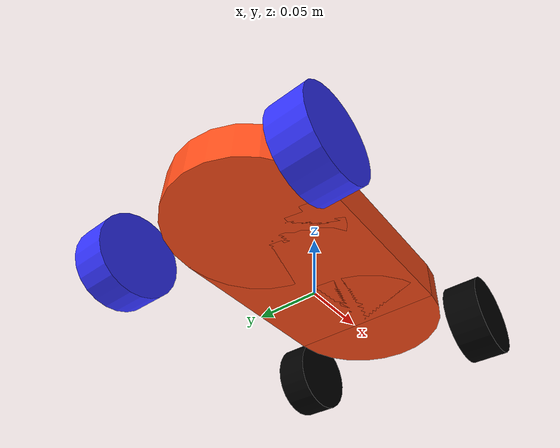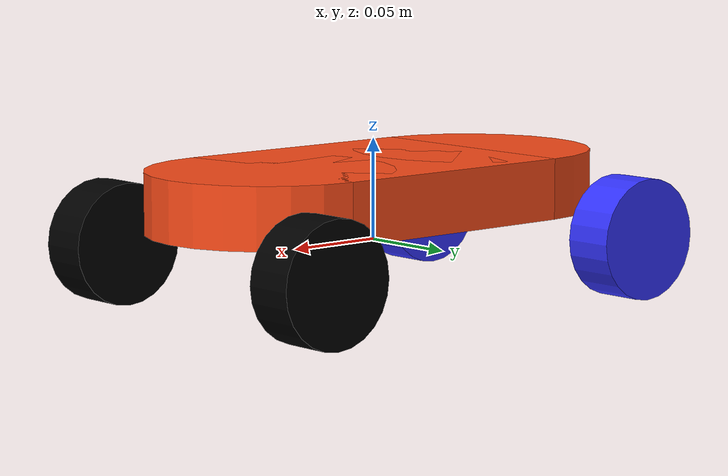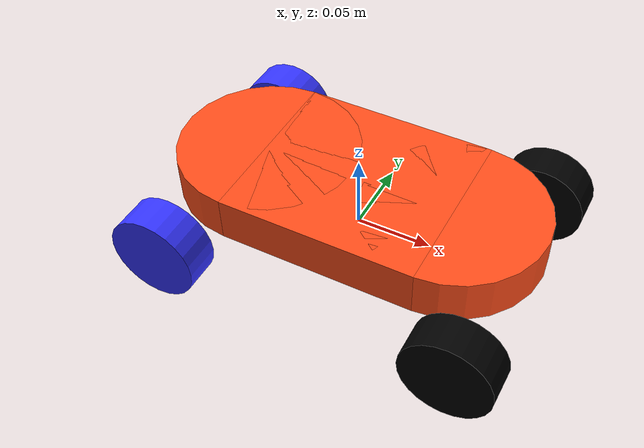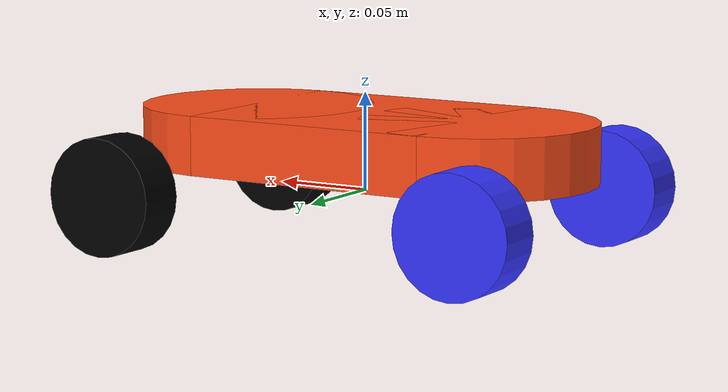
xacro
<?xml version="1.0"?>
<robot xmlns:xacro="http://www.ros.org/wiki/xacro" name="robot">

    <xacro:include filename="inertial_macros.xacro" />
    <!--Including all colors to be used-->
    <material name="white">
        <color rgba="1 1 1 1" />
    </material>
    <material name="blue">
        <color rgba="0.2 0.2 1 1" />
    </material>
    <material name="orange">
        <color rgba="1 0.3 0.1 1" />
    </material>
    <material name="black">
        <color rgba="0 0 0 1" />
    </material>

    <!--Including the base link-->
    <link name="base_link">
        <xacro:inertial_box mass="1.0" x="0.01" y="0.01" z="0.01">
            <origin xyz="0 0 0" rpy="0 0 0" />
        </xacro:inertial_box>
    </link>

    <joint name="chassis_joint" type="fixed">
        <parent link="base_link" />
        <child link="chassis" />
        <origin xyz="0 0 0.025" />
    </joint>

    <link name="chassis">

        <!-- Center box -->
        <visual>
            <origin xyz="0 0 0" />
            <geometry>
                <box size="0.13 0.12 0.03" />
            </geometry>
            <material name="orange" />
        </visual>

        <!-- Front rounded end -->
        <visual>
            <origin xyz="0.065 0 0" />
            <geometry>
                <cylinder radius="0.06" length="0.03" />
            </geometry>
            <material name="orange" />
        </visual>

        <!-- Rear rounded end -->
        <visual>
            <origin xyz="-0.065 0 0" />
            <geometry>
                <cylinder radius="0.06" length="0.03" />
            </geometry>
            <material name="orange" />
        </visual>
        <collision>
            <origin xyz="0 0 0" />
            <geometry>
                <box size="0.13 0.12 0.03" />
            </geometry>
        </collision>

        <collision>
            <origin xyz="0.065 0 0" />
            <geometry>
                <cylinder radius="0.06" length="0.03" />
            </geometry>
        </collision>

        <collision>
            <origin xyz="-0.065 0 0" />
            <geometry>
                <cylinder radius="0.06" length="0.03" />
            </geometry>
        </collision>
        <xacro:inertial_box mass="0.5" x="0.25" y="0.12" z="0.03">
            <origin xyz="0 0 0" rpy="0 0 0" />
        </xacro:inertial_box>
    </link>
    <!--Joints and links for the rear wheels-->
    <joint name="rear_left_wheel_joint" type="continuous">
        <parent link="base_link" />
        <child link="rear_left_wheel" />
        <origin xyz="-0.10 0.078 0" rpy="-${pi/2} 0 0" />
        <axis xyz="0 0 1" />
    </joint>

    <link name="rear_left_wheel">
        <visual>
            <geometry>
                <cylinder radius="0.03" length="0.025" />
            </geometry>
            <material name="blue" />
        </visual>
        <collision>
            <geometry>
                <cylinder radius="0.03" length="0.025" />
            </geometry>
        </collision>
        <xacro:inertial_cylinder mass="0.1" length="0.025" radius="0.03">
            <origin xyz="0 0 0" rpy="0 0 0" />
        </xacro:inertial_cylinder>
    </link>
    <gazebo reference="rear_left_wheel">
        <mu1 value="1.0" />
        <mu2 value="1.0" />
    </gazebo>

    <joint name="rear_right_wheel_joint" type="continuous">
        <parent link="base_link" />
        <child link="rear_right_wheel" />
        <origin xyz="-0.10 -0.078 0" rpy="${pi/2} 0 0" />
        <axis xyz="0 0 -1" />
    </joint>

    <link name="rear_right_wheel">
        <visual>
            <geometry>
                <cylinder radius="0.03" length="0.025" />
            </geometry>
            <material name="blue" />
        </visual>
        <collision>
            <geometry>
                <cylinder radius="0.03" length="0.025" />
            </geometry>
        </collision>
        <xacro:inertial_cylinder mass="0.1" length="0.03" radius="0.025">
            <origin xyz="0 0 0" rpy="0 0 0" />
        </xacro:inertial_cylinder>
    </link>
    <gazebo reference="rear_right_wheel">
        <mu1 value="1.0" />
        <mu2 value="1.0" />
    </gazebo>

    <!--Joint and links for the front wheels-->
    <link name="front_left_steer_link">
        <visual>
            <geometry>
                <box size="0.01 0.01 0.01" />
            </geometry>
        </visual>
        <xacro:inertial_box mass="0.01" x="0.01" y="0.01" z="0.01">
            <origin xyz="0 0 0" rpy="0 0 0" />
        </xacro:inertial_box>
    </link>

    <joint name="front_left_steer_joint" type="revolute">
        <parent link="base_link" />
        <child link="front_left_steer_link" />
        <limit lower="-0.6" upper="0.6" effort="10" velocity="1" />
        <origin xyz="0.10 0.078 0" />
        <axis xyz="0 0 1" />
    </joint>

    <joint name="front_left_wheel_joint" type="continuous">
        <parent link="front_left_steer_link" />
        <child link="front_left_wheel" />
        <origin rpy="-${pi/2} 0 0" />
        <axis xyz="0 0 1" />
    </joint>

    <link name="front_left_wheel">
        <visual>
            <geometry>
                <cylinder radius="0.03" length="0.025" />
            </geometry>
            <material name="black" />
        </visual>
        <collision>
            <geometry>
                <cylinder radius="0.03" length="0.025" />
            </geometry>
        </collision>
        <xacro:inertial_cylinder mass="0.1" length="0.03" radius="0.025">
            <origin xyz="0 0 0" rpy="0 0 0" />
        </xacro:inertial_cylinder>
    </link>
    <gazebo reference="front_left_wheel">
        <mu1 value="1.0" />
        <mu2 value="1.0" />
    </gazebo>

    <link name="front_right_steer_link">
        <visual>
            <geometry>
                <box size="0.01 0.01 0.01" />
            </geometry>
        </visual>
        <xacro:inertial_box mass="0.01" x="0.01" y="0.01" z="0.01">
            <origin xyz="0 0 0" rpy="0 0 0" />
        </xacro:inertial_box>
    </link>

    <joint name="front_right_steer_joint" type="revolute">
        <parent link="base_link" />
        <child link="front_right_steer_link" />
        <limit lower="-0.6" upper="0.6" effort="10" velocity="1" />
        <origin xyz="0.10 -0.078 0" />
        <axis xyz="0 0 1" />
    </joint>

    <joint name="front_right_wheel_joint" type="continuous">
        <parent link="front_right_steer_link" />
        <child link="front_right_wheel" />
        <origin rpy="${pi/2} 0 0" />
        <axis xyz="0 0 -1" />
    </joint>

    <link name="front_right_wheel">
        <visual>
            <geometry>
                <cylinder radius="0.03" length="0.025" />
            </geometry>
            <material name="black" />
        </visual>
        <collision>
            <geometry>
                <cylinder radius="0.03" length="0.025" />
            </geometry>
        </collision>
        <xacro:inertial_cylinder mass="0.1" length="0.03" radius="0.025">
            <origin xyz="0 0 0" rpy="0 0 0" />
        </xacro:inertial_cylinder>
    </link>
    <gazebo reference="front_right_wheel">
        <mu1 value="1.0" />
        <mu2 value="1.0" />
    </gazebo>

    <gazebo>
        <!-- Including the ackermann plugin from  gazebo for the ackermann movement -->
        <plugin filename="gz-sim-ackermann-steering-system"
            name="gz::sim::systems::AckermannSteering">
            <left_joint>rear_left_wheel_joint</left_joint>
            <right_joint>rear_right_wheel_joint</right_joint>

            <left_steering_joint>front_left_steer_joint</left_steering_joint>
            <right_steering_joint>front_right_steer_joint</right_steering_joint>

            <wheel_base>0.16</wheel_base>
            <wheel_separation>0.17</wheel_separation>
            <wheel_radius>0.04</wheel_radius>

            <steering_limit>0.6</steering_limit>
            <topic>/model/midsem_robot/cmd_vel</topic>
            <odom_publish_frequency>30</odom_publish_frequency>
            <frame_id>odom</frame_id>
            <child_frame_id>base_link</child_frame_id>
        </plugin>
    </gazebo>

</robot>

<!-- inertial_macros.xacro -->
<robot xmlns:xacro="http://www.ros.org/wiki/xacro">
    <xacro:macro name="inertial_box" params="mass x y z *origin">
        <!-- Including the physics calculations for the robot -->
        <inertial>
            <xacro:insert_block name="origin" />
            <mass value="${mass}" />
            <inertia ixx="${(1/12) * mass * (y*y+z*z)}" ixy="0.0" ixz="0.0"
                iyy="${(1/12) * mass * (x*x+z*z)}" iyz="0.0"
                izz="${(1/12) * mass * (x*x+y*y)}" />
        </inertial>
    </xacro:macro>

    <xacro:macro name="inertial_cylinder" params="mass radius length *origin">
        <inertial>
            <xacro:insert_block name="origin" />
            <mass value="${mass}" />
            <inertia ixx="${(1/12) * mass * (3*radius*radius + length*length)}" ixy="0.0" ixz="0.0"
                iyy="${(1/12) * mass * (3*radius*radius + length*length)}" iyz="0.0"
                izz="${(1/2) * mass * (radius*radius)}" />
        </inertial>
    </xacro:macro>

</robot>
